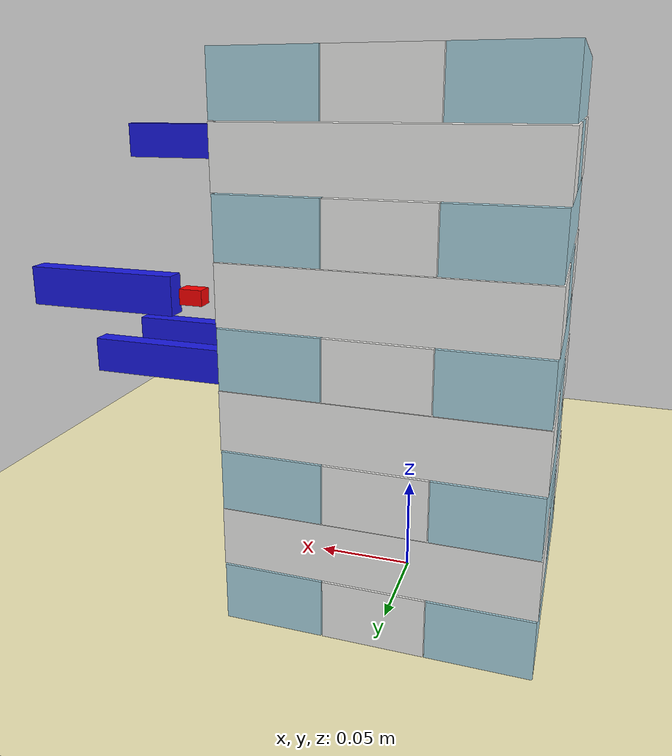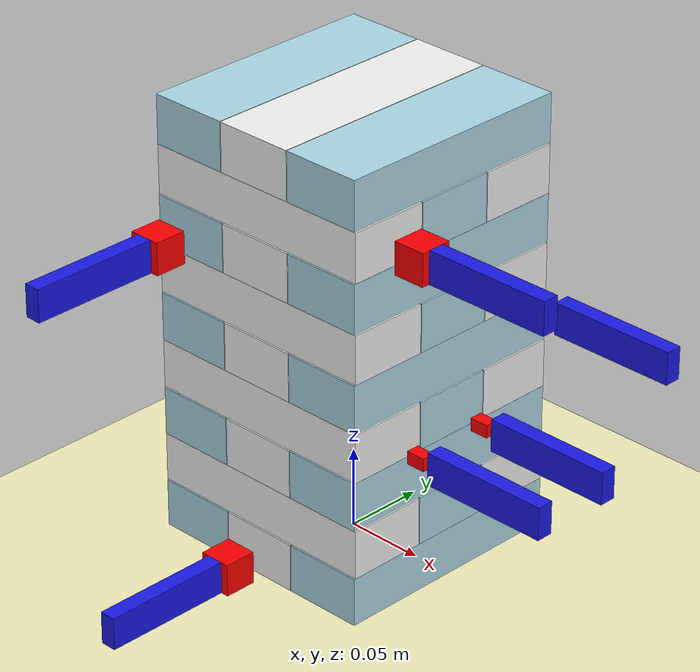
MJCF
<mujoco model="jenga">

    <compiler angle="degree" coordinate="local"/>

    <option gravity="0 0 -9.81" timestep="0.002" iterations="200" solver="Newton" />

    <default>
        <geom density="650"
              margin="0.0005"
              gap="0.0005"
/>
    </default>

    <worldbody>
        <light diffuse=".5 .5 .5" pos="0 0 4" dir="0 0 -1"/>

        <geom
            type="plane"
            size="0.3 0.3 0.01"
            rgba="0.96 0.93 0.73 1"
            friction="0.8 0.001 0.0001"
        />

        <body name="hook" pos="0.15 0.05 0.16">
            <joint name="hook_slide" type="slide" axis="1 0 0" damping="2"/>
             <joint name="hook_slide_y" type="slide" axis="0 1 0" damping="2"/>
              <joint name="hook_slide_z" type="slide" axis="0 0 1" damping="2"/>
              <joint name="hook_yaw" type="hinge" axis="0 0 1" range="-60 60" limited="true"/>

            <geom type="box"
                size="0.04 0.005 0.01"
                pos="0 0 0"
                rgba="0.1 0.1 0.9 1"
                density="2000"
                contype="0"
                conaffinity="0"/>

            <geom type="box"
                size="0.006 0.004 0.004"
                pos="-0.05 0 0"
                rgba="1 0 0 1"
                density="2000"/>
        </body>

        <body name="hook2" pos="0.15 -0.05 0.107">
            <joint name="hook_slide2" type="slide" axis="1 0 0" damping="2"/>

            <geom type="box"
                size="0.04 0.005 0.01"
                pos="0 0 0"
                rgba="0.1 0.1 0.9 1"
                density="2000"
                contype="0"
                conaffinity="0"/>

            <geom type="box"
                size="0.006 0.004 0.004"
                pos="-0.05 0 0"
                rgba="1 0 0 1"
                density="2000"/>
        </body>

        <body name="hook3" pos="0.15 0 0.107">
            <joint name="hook_slide3" type="slide" axis="1 0 0" damping="2"/>

            <geom type="box"
                size="0.04 0.005 0.01"
                pos="0 0 0"
                rgba="0.1 0.1 0.9 1"
                density="2000"
                contype="0"
                conaffinity="0"/>

            <geom type="box"
                size="0.006 0.004 0.004"
                pos="-0.05 0 0"
                rgba="1 0 0 1"
                density="2000"/>
        </body>

        <body name="b1_1" pos="-0.0505 0 0.0155" >
            <joint type="free"/>

            <geom
                type="box"
                size="0.025 0.076 0.015"
                rgba="0.68 0.85 0.9 1"
                friction="0.369 0.048 0.001"
            />
        </body>

        <body name="b1_2" pos="0 0 0.0155" >
            <joint type="free"/>

            <geom
                type="box"
                size="0.025 0.076 0.015"
                rgba="0.96 0.96 0.95 1"
                friction="0.284 0.023 0.001"
            />
        </body>

        <body name="b1_3" pos="0.0505 0 0.0155" >
            <joint type="free"/>

            <geom
                type="box"
                size="0.025 0.076 0.015"
                rgba="0.68 0.85 0.9 1"
                friction="0.302 0.030 0.001"
            />
        </body>

        <body name="b2_1" pos="0 0.0505 0.046" euler="0 0 90">
            <joint type="free"/>

            <geom
                type="box"
                size="0.025 0.076 0.015"
                rgba="0.96 0.96 0.95 1"
                friction="0.357 0.025 0.001"
            />
        </body>

        <body name="b2_2" pos="0 0 0.046" euler="0 0 90">
            <joint type="free"/>

            <geom
                type="box"
                size="0.025 0.076 0.015"
                rgba="0.68 0.85 0.9 1"
                friction="0.295 0.039 0.001"
            />
        </body>

        <body name="b2_3" pos="0 -0.0505 0.046" euler="0 0 90">
            <joint type="free"/>

            <geom
                type="box"
                size="0.025 0.076 0.015"
                rgba="0.96 0.96 0.95 1"
                friction="0.382 0.035 0.001"
            />
        </body>

        <body name="b3_1" pos="-0.0505 0 0.0765" >
            <joint type="free"/>

            <geom
                type="box"
                size="0.025 0.076 0.015"
                rgba="0.68 0.85 0.9 1"
                friction="0.256 0.048 0.001"
            />
        </body>

        <body name="b3_2" pos="0 0 0.0765" >
            <joint type="free"/>

            <geom
                type="box"
                size="0.025 0.076 0.015"
                rgba="0.96 0.96 0.95 1"
                friction="0.324 0.023 0.001"
            />
        </body>

        <body name="b3_3" pos="0.0505 0 0.0765" >
            <joint type="free"/>

            <geom
                type="box"
                size="0.025 0.076 0.015"
                rgba="0.68 0.85 0.9 1"
                friction="0.382 0.059 0.001"
            />
        </body>

        <body name="b4_1" pos="0 0.0505 0.107" euler="0 0 90">
            <joint type="free"/>

            <geom
                type="box"
                size="0.025 0.076 0.015"
                rgba="0.96 0.96 0.95 1"
                friction="0.362 0.055 0.001"
            />
        </body>

        <body name="b4_2" pos="0 0 0.107" euler="0 0 90">
            <joint type="free"/>

            <geom
                type="box"
                size="0.025 0.076 0.015"
                rgba="0.68 0.85 0.9 1"
                friction="0.262 0.046 0.001"
            />
        </body>

        <body name="b4_3" pos="0 -0.0505 0.107" euler="0 0 90">
            <joint type="free"/>

            <geom
                type="box"
                size="0.025 0.076 0.015"
                rgba="0.96 0.96 0.95 1"
                friction="0.380 0.044 0.001"
            />
        </body>

        <body name="b5_1" pos="-0.0505 0 0.1375" >
            <joint type="free"/>

            <geom
                type="box"
                size="0.025 0.076 0.015"
                rgba="0.68 0.85 0.9 1"
                friction="0.294 0.015 0.001"
            />
        </body>

        <body name="b5_2" pos="0 0 0.1375" >
            <joint type="free"/>

            <geom
                type="box"
                size="0.025 0.076 0.015"
                rgba="0.96 0.96 0.95 1"
                friction="0.287 0.041 0.001"
            />
        </body>

        <body name="b5_3" pos="0.0505 0 0.1375" >
            <joint type="free"/>

            <geom
                type="box"
                size="0.025 0.076 0.015"
                rgba="0.68 0.85 0.9 1"
                friction="0.383 0.058 0.001"
            />
        </body>

        <body name="b6_1" pos="0 0.0505 0.168" euler="0 0 90">
            <joint type="free"/>

            <geom
                type="box"
                size="0.025 0.076 0.015"
                rgba="0.96 0.96 0.95 1"
                friction="0.295 0.053 0.001"
            />
        </body>

        <body name="b6_2" pos="0 0 0.168" euler="0 0 90">
            <joint type="free"/>

            <geom
                type="box"
                size="0.025 0.076 0.015"
                rgba="0.68 0.85 0.9 1"
                friction="0.252 0.050 0.001"
            />
        </body>

        <body name="b6_3" pos="0 -0.0505 0.168" euler="0 0 90">
            <joint type="free"/>

            <geom
                type="box"
                size="0.025 0.076 0.015"
                rgba="0.96 0.96 0.95 1"
                friction="0.310 0.011 0.001"
            />
        </body>

        <body name="b7_1" pos="-0.0505 0 0.1985" >
            <joint type="free"/>

            <geom
                type="box"
                size="0.025 0.076 0.015"
                rgba="0.68 0.85 0.9 1"
                friction="0.344 0.030 0.001"
            />
        </body>

        <body name="b7_2" pos="0 0 0.1985" >
            <joint type="free"/>

            <geom
                type="box"
                size="0.025 0.076 0.015"
                rgba="0.96 0.96 0.95 1"
                friction="0.365 0.043 0.001"
            />
        </body>

        <body name="b7_3" pos="0.0505 0 0.1985" >
            <joint type="free"/>

            <geom
                type="box"
                size="0.025 0.076 0.015"
                rgba="0.68 0.85 0.9 1"
                friction="0.250 0.035 0.0015"
            />
        </body>

        <body name="b8_1" pos="0 0.0505 0.229" euler="0 0 90">
            <joint type="free"/>

            <geom
                type="box"
                size="0.025 0.076 0.015"
                rgba="0.96 0.96 0.95 1"
                friction="0.374 0.022 0.001"
            />
        </body>

        <body name="b8_2" pos="0 0 0.229" euler="0 0 90">
            <joint type="free"/>

            <geom
                type="box"
                size="0.025 0.076 0.015"
                rgba="0.68 0.85 0.9 1"
                friction="0.265 0.054 0.001"
            />
        </body>

        <body name="b8_3" pos="0 -0.0505 0.229" euler="0 0 90">
            <joint type="free"/>

            <geom
                type="box"
                size="0.025 0.076 0.015"
                rgba="0.96 0.96 0.95 1"
                friction="0.238 0.038 0.001"
            />
        </body>

        <body name="b9_1" pos="-0.0505 0 0.2595" >
            <joint type="free"/>

            <geom
                type="box"
                size="0.025 0.076 0.015"
                rgba="0.68 0.85 0.9 1"
                friction="0.248 0.058 0.001"
            />
        </body>

        <body name="b9_2" pos="0 0 0.2595" >
            <joint type="free"/>

            <geom
                type="box"
                size="0.025 0.076 0.015"
                rgba="0.96 0.96 0.95 1"
                friction="0.361 0.032 0.001"
            />
        </body>

        <body name="b9_3" pos="0.0505 0 0.2595" >
            <joint type="free"/>

            <geom
                type="box"
                size="0.025 0.076 0.015"
                rgba="0.68 0.85 0.9 1"
                friction="0.216 0.026 0.001"
            />
        </body>

        <body name="hook_slide"
              pos="0.15 -0.0505 0.229"
              euler="0 0 0">
            <joint name="hook_slide" type="slide" axis="1 0 0" damping="2"/>

            <geom type="box"
                size="0.04 0.005 0.01"
                pos="0 0 0"
                rgba="0.1 0.1 0.9 1"
                density="2000"/>

            <geom type="box"
                size="0.01 0.01 0.01"
                pos="-0.05 0 0"
                rgba="1 0 0 1"
                density="2000"/>
        </body>

        <body name="hook_slide2"
              pos="-0.0505 -0.15 0.1985"
              euler="0 0 -90">
            <joint name="hook_slide2" type="slide" axis="1 0 0" damping="2"/>

            <geom type="box"
                size="0.04 0.005 0.01"
                pos="0 0 0"
                rgba="0.1 0.1 0.9 1"
                density="2000"/>

            <geom type="box"
                size="0.01 0.01 0.01"
                pos="-0.05 0 0"
                rgba="1 0 0 1"
                density="2000"/>
        </body>

        <body name="hook_slide3"
              pos="0 -0.15 0.0155"
              euler="0 0 -90">
            <joint name="hook_slide3" type="slide" axis="1 0 0" damping="2"/>

            <geom type="box"
                size="0.04 0.005 0.01"
                pos="0 0 0"
                rgba="0.1 0.1 0.9 1"
                density="2000"/>

            <geom type="box"
                size="0.01 0.01 0.01"
                pos="-0.05 0 0"
                rgba="1 0 0 1"
                density="2000"/>
        </body>

    </worldbody>

    <actuator>
        <motor name="hook_x_motor" joint="hook_slide" ctrlrange="-1 1" gear="5"/>
        <position name="hook_y_pos" joint="hook_slide_y" ctrlrange="-0.05 0.05" kp="50" />
        <position name="hook_z_pos" joint="hook_slide_z" ctrlrange="-0.05 0.05" kp="50" />
        <position name="hook_yaw_pos" joint="hook_yaw" ctrlrange="-1 1" kp="20"/>
        <motor joint="hook_slide2" ctrlrange="-1 1" gear="5"/>
        <motor joint="hook_slide3" ctrlrange="-1 1" gear="5"/>
    </actuator>

</mujoco>
